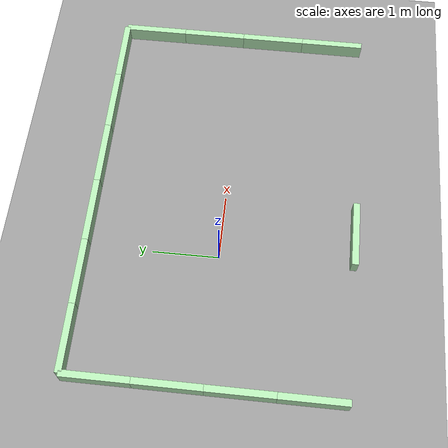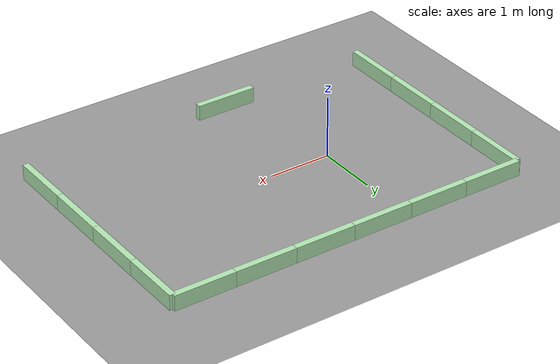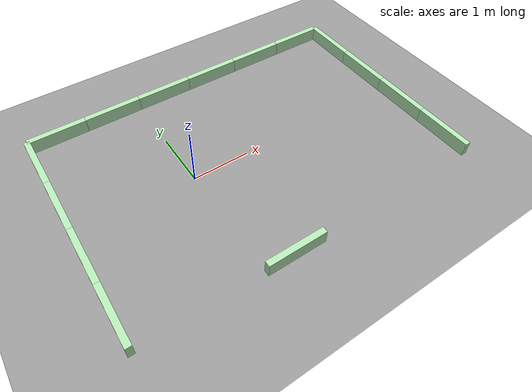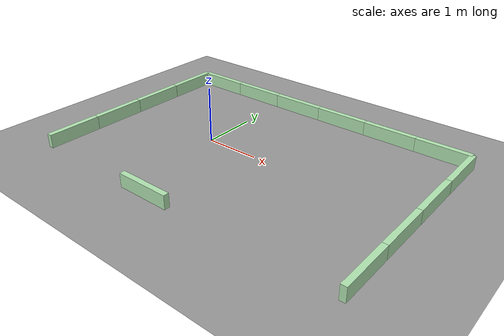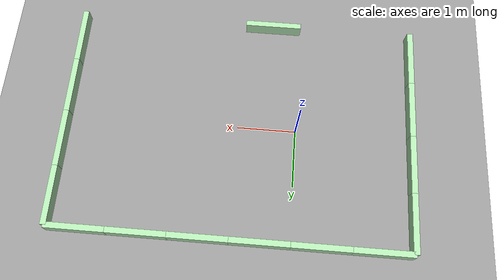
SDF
<sdf version="1.6">
 <world name="default">
  <model name="ground_plane_0">
   <static>1</static>
   <link name="link">
    <collision name="collision">
     <geometry><plane><normal>0 0 1</normal><size>100 100</size></plane></geometry>
     <surface><friction><ode><mu>100</mu><mu2>50</mu2></ode></friction></surface>
    </collision>
    <visual name="visual">
     <cast_shadows>0</cast_shadows>
     <geometry><plane><normal>0 0 1</normal><size>100 100</size></plane></geometry>
     <material>
      <script><uri>file://media/materials/scripts/gazebo.material</uri><name>Gazebo/Grey</name></script>
     </material>
    </visual>
    <velocity_decay><linear>0</linear><angular>0</angular></velocity_decay>
   </link>
   <pose>0.497681 0 0 0 -0 0</pose>
  </model>
  <model name="wall_100_25h">
   <link name="link">
    <inertial>
     <mass>1</mass>
     <inertia>
      <ixx>0.166667</ixx>
      <ixy>0</ixy>
      <ixz>0</ixz>
      <iyy>0.166667</iyy>
      <iyz>0</iyz>
      <izz>0.166667</izz>
     </inertia>
    </inertial>
    <visual name="visual">
     <geometry><box><size>1 0.1 0.25</size></box></geometry>
     <material>
      <script><name>Gazebo/Grey</name><uri>file://media/materials/scripts/gazebo.material</uri></script>
      <ambient>0.3 0.5 0.3 1</ambient>
      <diffuse>0.7 0.9 0.7 1</diffuse>
      <specular>0.01 0.02 0.01 1</specular>
      <emissive>0 0 0 1</emissive>
      <lighting>1</lighting>
      <shader type="vertex"><normal_map>__default__</normal_map></shader>
     </material>
    </visual>
    <collision name="collision">
     <geometry><box><size>1 0.1 0.25</size></box></geometry>
     <surface>
      <friction>
       <ode><mu>1</mu><mu2>1</mu2><fdir1>0 0 0</fdir1><slip1>0</slip1><slip2>0</slip2></ode>
       <torsional>
        <coefficient>1</coefficient>
        <patch_radius>0</patch_radius>
        <surface_radius>0</surface_radius>
        <use_patch_radius>1</use_patch_radius>
        <ode><slip>0</slip></ode>
       </torsional>
      </friction>
      <bounce><restitution_coefficient>0</restitution_coefficient><threshold>1e+06</threshold></bounce>
      <contact>
       <collide_without_contact>0</collide_without_contact>
       <collide_without_contact_bitmask>1</collide_without_contact_bitmask>
       <collide_bitmask>1</collide_bitmask>
       <ode>
        <soft_cfm>0</soft_cfm>
        <soft_erp>0.2</soft_erp>
        <kp>1e+13</kp>
        <kd>1</kd>
        <max_vel>0.01</max_vel>
        <min_depth>0</min_depth>
       </ode>
       <bullet>
        <split_impulse>1</split_impulse>
        <split_impulse_penetration_threshold>-0.01</split_impulse_penetration_threshold>
        <soft_cfm>0</soft_cfm>
        <soft_erp>0.2</soft_erp>
        <kp>1e+13</kp>
        <kd>1</kd>
       </bullet>
      </contact>
     </surface>
    </collision>
   </link>
   <static>1</static>
   <pose>-0.5 2 0.1252 0 -0 0</pose>
  </model>
  <model name="wall_100_25h_clone">
   <link name="link">
    <inertial>
     <mass>1</mass>
     <inertia>
      <ixx>0.166667</ixx>
      <ixy>0</ixy>
      <ixz>0</ixz>
      <iyy>0.166667</iyy>
      <iyz>0</iyz>
      <izz>0.166667</izz>
     </inertia>
    </inertial>
    <visual name="visual">
     <geometry><box><size>1 0.1 0.25</size></box></geometry>
     <material>
      <script><name>Gazebo/Grey</name><uri>file://media/materials/scripts/gazebo.material</uri></script>
      <ambient>0.3 0.5 0.3 1</ambient>
      <diffuse>0.7 0.9 0.7 1</diffuse>
      <specular>0.01 0.02 0.01 1</specular>
      <emissive>0 0 0 1</emissive>
      <lighting>1</lighting>
      <shader type="vertex"><normal_map>__default__</normal_map></shader>
     </material>
    </visual>
    <collision name="collision">
     <geometry><box><size>1 0.1 0.25</size></box></geometry>
     <surface>
      <friction>
       <ode><mu>1</mu><mu2>1</mu2><fdir1>0 0 0</fdir1><slip1>0</slip1><slip2>0</slip2></ode>
       <torsional>
        <coefficient>1</coefficient>
        <patch_radius>0</patch_radius>
        <surface_radius>0</surface_radius>
        <use_patch_radius>1</use_patch_radius>
        <ode><slip>0</slip></ode>
       </torsional>
      </friction>
      <bounce><restitution_coefficient>0</restitution_coefficient><threshold>1e+06</threshold></bounce>
      <contact>
       <collide_without_contact>0</collide_without_contact>
       <collide_without_contact_bitmask>1</collide_without_contact_bitmask>
       <collide_bitmask>1</collide_bitmask>
       <ode>
        <soft_cfm>0</soft_cfm>
        <soft_erp>0.2</soft_erp>
        <kp>1e+13</kp>
        <kd>1</kd>
        <max_vel>0.01</max_vel>
        <min_depth>0</min_depth>
       </ode>
       <bullet>
        <split_impulse>1</split_impulse>
        <split_impulse_penetration_threshold>-0.01</split_impulse_penetration_threshold>
        <soft_cfm>0</soft_cfm>
        <soft_erp>0.2</soft_erp>
        <kp>1e+13</kp>
        <kd>1</kd>
       </bullet>
      </contact>
     </surface>
    </collision>
   </link>
   <static>1</static>
   <pose>0.5 2 0.1252 0 -0 0</pose>
  </model>
  <model name="wall_100_25h_clone_clone">
   <link name="link">
    <inertial>
     <mass>1</mass>
     <inertia>
      <ixx>0.166667</ixx>
      <ixy>0</ixy>
      <ixz>0</ixz>
      <iyy>0.166667</iyy>
      <iyz>0</iyz>
      <izz>0.166667</izz>
     </inertia>
    </inertial>
    <visual name="visual">
     <geometry><box><size>1 0.1 0.25</size></box></geometry>
     <material>
      <script><name>Gazebo/Grey</name><uri>file://media/materials/scripts/gazebo.material</uri></script>
      <ambient>0.3 0.5 0.3 1</ambient>
      <diffuse>0.7 0.9 0.7 1</diffuse>
      <specular>0.01 0.02 0.01 1</specular>
      <emissive>0 0 0 1</emissive>
      <lighting>1</lighting>
      <shader type="vertex"><normal_map>__default__</normal_map></shader>
     </material>
    </visual>
    <collision name="collision">
     <geometry><box><size>1 0.1 0.25</size></box></geometry>
     <surface>
      <friction>
       <ode><mu>1</mu><mu2>1</mu2><fdir1>0 0 0</fdir1><slip1>0</slip1><slip2>0</slip2></ode>
       <torsional>
        <coefficient>1</coefficient>
        <patch_radius>0</patch_radius>
        <surface_radius>0</surface_radius>
        <use_patch_radius>1</use_patch_radius>
        <ode><slip>0</slip></ode>
       </torsional>
      </friction>
      <bounce><restitution_coefficient>0</restitution_coefficient><threshold>1e+06</threshold></bounce>
      <contact>
       <collide_without_contact>0</collide_without_contact>
       <collide_without_contact_bitmask>1</collide_without_contact_bitmask>
       <collide_bitmask>1</collide_bitmask>
       <ode>
        <soft_cfm>0</soft_cfm>
        <soft_erp>0.2</soft_erp>
        <kp>1e+13</kp>
        <kd>1</kd>
        <max_vel>0.01</max_vel>
        <min_depth>0</min_depth>
       </ode>
       <bullet>
        <split_impulse>1</split_impulse>
        <split_impulse_penetration_threshold>-0.01</split_impulse_penetration_threshold>
        <soft_cfm>0</soft_cfm>
        <soft_erp>0.2</soft_erp>
        <kp>1e+13</kp>
        <kd>1</kd>
       </bullet>
      </contact>
     </surface>
    </collision>
   </link>
   <static>1</static>
   <pose>1.5 2 0.1252 0 -0 0</pose>
  </model>
  <model name="wall_100_25h_clone_clone_0">
   <link name="link">
    <inertial>
     <mass>1</mass>
     <inertia>
      <ixx>0.166667</ixx>
      <ixy>0</ixy>
      <ixz>0</ixz>
      <iyy>0.166667</iyy>
      <iyz>0</iyz>
      <izz>0.166667</izz>
     </inertia>
    </inertial>
    <visual name="visual">
     <geometry><box><size>1 0.1 0.25</size></box></geometry>
     <material>
      <script><name>Gazebo/Grey</name><uri>file://media/materials/scripts/gazebo.material</uri></script>
      <ambient>0.3 0.5 0.3 1</ambient>
      <diffuse>0.7 0.9 0.7 1</diffuse>
      <specular>0.01 0.02 0.01 1</specular>
      <emissive>0 0 0 1</emissive>
      <lighting>1</lighting>
      <shader type="vertex"><normal_map>__default__</normal_map></shader>
     </material>
    </visual>
    <collision name="collision">
     <geometry><box><size>1 0.1 0.25</size></box></geometry>
     <surface>
      <friction>
       <ode><mu>1</mu><mu2>1</mu2><fdir1>0 0 0</fdir1><slip1>0</slip1><slip2>0</slip2></ode>
       <torsional>
        <coefficient>1</coefficient>
        <patch_radius>0</patch_radius>
        <surface_radius>0</surface_radius>
        <use_patch_radius>1</use_patch_radius>
        <ode><slip>0</slip></ode>
       </torsional>
      </friction>
      <bounce><restitution_coefficient>0</restitution_coefficient><threshold>1e+06</threshold></bounce>
      <contact>
       <collide_without_contact>0</collide_without_contact>
       <collide_without_contact_bitmask>1</collide_without_contact_bitmask>
       <collide_bitmask>1</collide_bitmask>
       <ode>
        <soft_cfm>0</soft_cfm>
        <soft_erp>0.2</soft_erp>
        <kp>1e+13</kp>
        <kd>1</kd>
        <max_vel>0.01</max_vel>
        <min_depth>0</min_depth>
       </ode>
       <bullet>
        <split_impulse>1</split_impulse>
        <split_impulse_penetration_threshold>-0.01</split_impulse_penetration_threshold>
        <soft_cfm>0</soft_cfm>
        <soft_erp>0.2</soft_erp>
        <kp>1e+13</kp>
        <kd>1</kd>
       </bullet>
      </contact>
     </surface>
    </collision>
   </link>
   <static>1</static>
   <pose>-1.5 2 0.1252 0 -0 0</pose>
  </model>
  <model name="wall_100_25h_clone_clone_2">
   <link name="link">
    <inertial>
     <mass>1</mass>
     <inertia>
      <ixx>0.166667</ixx>
      <ixy>0</ixy>
      <ixz>0</ixz>
      <iyy>0.166667</iyy>
      <iyz>0</iyz>
      <izz>0.166667</izz>
     </inertia>
    </inertial>
    <visual name="visual">
     <geometry><box><size>1 0.1 0.25</size></box></geometry>
     <material>
      <script><name>Gazebo/Grey</name><uri>file://media/materials/scripts/gazebo.material</uri></script>
      <ambient>0.3 0.5 0.3 1</ambient>
      <diffuse>0.7 0.9 0.7 1</diffuse>
      <specular>0.01 0.02 0.01 1</specular>
      <emissive>0 0 0 1</emissive>
      <lighting>1</lighting>
      <shader type="vertex"><normal_map>__default__</normal_map></shader>
     </material>
    </visual>
    <collision name="collision">
     <geometry><box><size>1 0.1 0.25</size></box></geometry>
     <surface>
      <friction>
       <ode><mu>1</mu><mu2>1</mu2><fdir1>0 0 0</fdir1><slip1>0</slip1><slip2>0</slip2></ode>
       <torsional>
        <coefficient>1</coefficient>
        <patch_radius>0</patch_radius>
        <surface_radius>0</surface_radius>
        <use_patch_radius>1</use_patch_radius>
        <ode><slip>0</slip></ode>
       </torsional>
      </friction>
      <bounce><restitution_coefficient>0</restitution_coefficient><threshold>1e+06</threshold></bounce>
      <contact>
       <collide_without_contact>0</collide_without_contact>
       <collide_without_contact_bitmask>1</collide_without_contact_bitmask>
       <collide_bitmask>1</collide_bitmask>
       <ode>
        <soft_cfm>0</soft_cfm>
        <soft_erp>0.2</soft_erp>
        <kp>1e+13</kp>
        <kd>1</kd>
        <max_vel>0.01</max_vel>
        <min_depth>0</min_depth>
       </ode>
       <bullet>
        <split_impulse>1</split_impulse>
        <split_impulse_penetration_threshold>-0.01</split_impulse_penetration_threshold>
        <soft_cfm>0</soft_cfm>
        <soft_erp>0.2</soft_erp>
        <kp>1e+13</kp>
        <kd>1</kd>
       </bullet>
      </contact>
     </surface>
    </collision>
   </link>
   <static>1</static>
   <pose>0.502276 -1.99731 0.1252 0 -0 0</pose>
  </model>
  <model name="wall_100_25h_clone_clone_5_clone_2">
   <link name="link">
    <inertial>
     <mass>1</mass>
     <inertia>
      <ixx>0.166667</ixx>
      <ixy>0</ixy>
      <ixz>0</ixz>
      <iyy>0.166667</iyy>
      <iyz>0</iyz>
      <izz>0.166667</izz>
     </inertia>
    </inertial>
    <visual name="visual">
     <geometry><box><size>1 0.1 0.25</size></box></geometry>
     <material>
      <script><name>Gazebo/Grey</name><uri>file://media/materials/scripts/gazebo.material</uri></script>
      <ambient>0.3 0.5 0.3 1</ambient>
      <diffuse>0.7 0.9 0.7 1</diffuse>
      <specular>0.01 0.02 0.01 1</specular>
      <emissive>0 0 0 1</emissive>
      <lighting>1</lighting>
      <shader type="vertex"><normal_map>__default__</normal_map></shader>
     </material>
    </visual>
    <collision name="collision">
     <geometry><box><size>1 0.1 0.25</size></box></geometry>
     <surface>
      <friction>
       <ode><mu>1</mu><mu2>1</mu2><fdir1>0 0 0</fdir1><slip1>0</slip1><slip2>0</slip2></ode>
       <torsional>
        <coefficient>1</coefficient>
        <patch_radius>0</patch_radius>
        <surface_radius>0</surface_radius>
        <use_patch_radius>1</use_patch_radius>
        <ode><slip>0</slip></ode>
       </torsional>
      </friction>
      <bounce><restitution_coefficient>0</restitution_coefficient><threshold>1e+06</threshold></bounce>
      <contact>
       <collide_without_contact>0</collide_without_contact>
       <collide_without_contact_bitmask>1</collide_without_contact_bitmask>
       <collide_bitmask>1</collide_bitmask>
       <ode>
        <soft_cfm>0</soft_cfm>
        <soft_erp>0.2</soft_erp>
        <kp>1e+13</kp>
        <kd>1</kd>
        <max_vel>0.01</max_vel>
        <min_depth>0</min_depth>
       </ode>
       <bullet>
        <split_impulse>1</split_impulse>
        <split_impulse_penetration_threshold>-0.01</split_impulse_penetration_threshold>
        <soft_cfm>0</soft_cfm>
        <soft_erp>0.2</soft_erp>
        <kp>1e+13</kp>
        <kd>1</kd>
       </bullet>
      </contact>
     </surface>
    </collision>
   </link>
   <static>1</static>
   <pose>-2 -1.5 0.1252 0 0 -1.57</pose>
  </model>
  <model name="wall_100_25h_clone_clone_5_clone_3">
   <link name="link">
    <inertial>
     <mass>1</mass>
     <inertia>
      <ixx>0.166667</ixx>
      <ixy>0</ixy>
      <ixz>0</ixz>
      <iyy>0.166667</iyy>
      <iyz>0</iyz>
      <izz>0.166667</izz>
     </inertia>
    </inertial>
    <visual name="visual">
     <geometry><box><size>1 0.1 0.25</size></box></geometry>
     <material>
      <script><name>Gazebo/Grey</name><uri>file://media/materials/scripts/gazebo.material</uri></script>
      <ambient>0.3 0.5 0.3 1</ambient>
      <diffuse>0.7 0.9 0.7 1</diffuse>
      <specular>0.01 0.02 0.01 1</specular>
      <emissive>0 0 0 1</emissive>
      <lighting>1</lighting>
      <shader type="vertex"><normal_map>__default__</normal_map></shader>
     </material>
    </visual>
    <collision name="collision">
     <geometry><box><size>1 0.1 0.25</size></box></geometry>
     <surface>
      <friction>
       <ode><mu>1</mu><mu2>1</mu2><fdir1>0 0 0</fdir1><slip1>0</slip1><slip2>0</slip2></ode>
       <torsional>
        <coefficient>1</coefficient>
        <patch_radius>0</patch_radius>
        <surface_radius>0</surface_radius>
        <use_patch_radius>1</use_patch_radius>
        <ode><slip>0</slip></ode>
       </torsional>
      </friction>
      <bounce><restitution_coefficient>0</restitution_coefficient><threshold>1e+06</threshold></bounce>
      <contact>
       <collide_without_contact>0</collide_without_contact>
       <collide_without_contact_bitmask>1</collide_without_contact_bitmask>
       <collide_bitmask>1</collide_bitmask>
       <ode>
        <soft_cfm>0</soft_cfm>
        <soft_erp>0.2</soft_erp>
        <kp>1e+13</kp>
        <kd>1</kd>
        <max_vel>0.01</max_vel>
        <min_depth>0</min_depth>
       </ode>
       <bullet>
        <split_impulse>1</split_impulse>
        <split_impulse_penetration_threshold>-0.01</split_impulse_penetration_threshold>
        <soft_cfm>0</soft_cfm>
        <soft_erp>0.2</soft_erp>
        <kp>1e+13</kp>
        <kd>1</kd>
       </bullet>
      </contact>
     </surface>
    </collision>
   </link>
   <static>1</static>
   <pose>-2 -0.5 0.1252 0 0 -1.57</pose>
  </model>
  <model name="wall_100_25h_clone_clone_5_clone_4">
   <link name="link">
    <inertial>
     <mass>1</mass>
     <inertia>
      <ixx>0.166667</ixx>
      <ixy>0</ixy>
      <ixz>0</ixz>
      <iyy>0.166667</iyy>
      <iyz>0</iyz>
      <izz>0.166667</izz>
     </inertia>
    </inertial>
    <visual name="visual">
     <geometry><box><size>1 0.1 0.25</size></box></geometry>
     <material>
      <script><name>Gazebo/Grey</name><uri>file://media/materials/scripts/gazebo.material</uri></script>
      <ambient>0.3 0.5 0.3 1</ambient>
      <diffuse>0.7 0.9 0.7 1</diffuse>
      <specular>0.01 0.02 0.01 1</specular>
      <emissive>0 0 0 1</emissive>
      <lighting>1</lighting>
      <shader type="vertex"><normal_map>__default__</normal_map></shader>
     </material>
    </visual>
    <collision name="collision">
     <geometry><box><size>1 0.1 0.25</size></box></geometry>
     <surface>
      <friction>
       <ode><mu>1</mu><mu2>1</mu2><fdir1>0 0 0</fdir1><slip1>0</slip1><slip2>0</slip2></ode>
       <torsional>
        <coefficient>1</coefficient>
        <patch_radius>0</patch_radius>
        <surface_radius>0</surface_radius>
        <use_patch_radius>1</use_patch_radius>
        <ode><slip>0</slip></ode>
       </torsional>
      </friction>
      <bounce><restitution_coefficient>0</restitution_coefficient><threshold>1e+06</threshold></bounce>
      <contact>
       <collide_without_contact>0</collide_without_contact>
       <collide_without_contact_bitmask>1</collide_without_contact_bitmask>
       <collide_bitmask>1</collide_bitmask>
       <ode>
        <soft_cfm>0</soft_cfm>
        <soft_erp>0.2</soft_erp>
        <kp>1e+13</kp>
        <kd>1</kd>
        <max_vel>0.01</max_vel>
        <min_depth>0</min_depth>
       </ode>
       <bullet>
        <split_impulse>1</split_impulse>
        <split_impulse_penetration_threshold>-0.01</split_impulse_penetration_threshold>
        <soft_cfm>0</soft_cfm>
        <soft_erp>0.2</soft_erp>
        <kp>1e+13</kp>
        <kd>1</kd>
       </bullet>
      </contact>
     </surface>
    </collision>
   </link>
   <static>1</static>
   <pose>-2 0.5 0.1252 0 0 -1.57</pose>
  </model>
  <model name="wall_100_25h_clone_clone_5_clone_5">
   <link name="link">
    <inertial>
     <mass>1</mass>
     <inertia>
      <ixx>0.166667</ixx>
      <ixy>0</ixy>
      <ixz>0</ixz>
      <iyy>0.166667</iyy>
      <iyz>0</iyz>
      <izz>0.166667</izz>
     </inertia>
    </inertial>
    <visual name="visual">
     <geometry><box><size>1 0.1 0.25</size></box></geometry>
     <material>
      <script><name>Gazebo/Grey</name><uri>file://media/materials/scripts/gazebo.material</uri></script>
      <ambient>0.3 0.5 0.3 1</ambient>
      <diffuse>0.7 0.9 0.7 1</diffuse>
      <specular>0.01 0.02 0.01 1</specular>
      <emissive>0 0 0 1</emissive>
      <lighting>1</lighting>
      <shader type="vertex"><normal_map>__default__</normal_map></shader>
     </material>
    </visual>
    <collision name="collision">
     <geometry><box><size>1 0.1 0.25</size></box></geometry>
     <surface>
      <friction>
       <ode><mu>1</mu><mu2>1</mu2><fdir1>0 0 0</fdir1><slip1>0</slip1><slip2>0</slip2></ode>
       <torsional>
        <coefficient>1</coefficient>
        <patch_radius>0</patch_radius>
        <surface_radius>0</surface_radius>
        <use_patch_radius>1</use_patch_radius>
        <ode><slip>0</slip></ode>
       </torsional>
      </friction>
      <bounce><restitution_coefficient>0</restitution_coefficient><threshold>1e+06</threshold></bounce>
      <contact>
       <collide_without_contact>0</collide_without_contact>
       <collide_without_contact_bitmask>1</collide_without_contact_bitmask>
       <collide_bitmask>1</collide_bitmask>
       <ode>
        <soft_cfm>0</soft_cfm>
        <soft_erp>0.2</soft_erp>
        <kp>1e+13</kp>
        <kd>1</kd>
        <max_vel>0.01</max_vel>
        <min_depth>0</min_depth>
       </ode>
       <bullet>
        <split_impulse>1</split_impulse>
        <split_impulse_penetration_threshold>-0.01</split_impulse_penetration_threshold>
        <soft_cfm>0</soft_cfm>
        <soft_erp>0.2</soft_erp>
        <kp>1e+13</kp>
        <kd>1</kd>
       </bullet>
      </contact>
     </surface>
    </collision>
   </link>
   <static>1</static>
   <pose>-2 1.5 0.1252 0 0 -1.57</pose>
  </model>
  <model name="wall_100_25h_clone_clone_5_clone_1_clone_1">
   <link name="link">
    <inertial>
     <mass>1</mass>
     <inertia>
      <ixx>0.166667</ixx>
      <ixy>0</ixy>
      <ixz>0</ixz>
      <iyy>0.166667</iyy>
      <iyz>0</iyz>
      <izz>0.166667</izz>
     </inertia>
    </inertial>
    <visual name="visual">
     <geometry><box><size>1 0.1 0.25</size></box></geometry>
     <material>
      <script><name>Gazebo/Grey</name><uri>file://media/materials/scripts/gazebo.material</uri></script>
      <ambient>0.3 0.5 0.3 1</ambient>
      <diffuse>0.7 0.9 0.7 1</diffuse>
      <specular>0.01 0.02 0.01 1</specular>
      <emissive>0 0 0 1</emissive>
      <lighting>1</lighting>
      <shader type="vertex"><normal_map>__default__</normal_map></shader>
     </material>
    </visual>
    <collision name="collision">
     <geometry><box><size>1 0.1 0.25</size></box></geometry>
     <surface>
      <friction>
       <ode><mu>1</mu><mu2>1</mu2><fdir1>0 0 0</fdir1><slip1>0</slip1><slip2>0</slip2></ode>
       <torsional>
        <coefficient>1</coefficient>
        <patch_radius>0</patch_radius>
        <surface_radius>0</surface_radius>
        <use_patch_radius>1</use_patch_radius>
        <ode><slip>0</slip></ode>
       </torsional>
      </friction>
      <bounce><restitution_coefficient>0</restitution_coefficient><threshold>1e+06</threshold></bounce>
      <contact>
       <collide_without_contact>0</collide_without_contact>
       <collide_without_contact_bitmask>1</collide_without_contact_bitmask>
       <collide_bitmask>1</collide_bitmask>
       <ode>
        <soft_cfm>0</soft_cfm>
        <soft_erp>0.2</soft_erp>
        <kp>1e+13</kp>
        <kd>1</kd>
        <max_vel>0.01</max_vel>
        <min_depth>0</min_depth>
       </ode>
       <bullet>
        <split_impulse>1</split_impulse>
        <split_impulse_penetration_threshold>-0.01</split_impulse_penetration_threshold>
        <soft_cfm>0</soft_cfm>
        <soft_erp>0.2</soft_erp>
        <kp>1e+13</kp>
        <kd>1</kd>
       </bullet>
      </contact>
     </surface>
    </collision>
   </link>
   <static>1</static>
   <pose>4 -1.5 0.1252 0 0 -1.5708</pose>
  </model>
  <model name="wall_100_25h_clone_clone_5_clone_1_clone_2">
   <link name="link">
    <inertial>
     <mass>1</mass>
     <inertia>
      <ixx>0.166667</ixx>
      <ixy>0</ixy>
      <ixz>0</ixz>
      <iyy>0.166667</iyy>
      <iyz>0</iyz>
      <izz>0.166667</izz>
     </inertia>
    </inertial>
    <visual name="visual">
     <geometry><box><size>1 0.1 0.25</size></box></geometry>
     <material>
      <script><name>Gazebo/Grey</name><uri>file://media/materials/scripts/gazebo.material</uri></script>
      <ambient>0.3 0.5 0.3 1</ambient>
      <diffuse>0.7 0.9 0.7 1</diffuse>
      <specular>0.01 0.02 0.01 1</specular>
      <emissive>0 0 0 1</emissive>
      <lighting>1</lighting>
      <shader type="vertex"><normal_map>__default__</normal_map></shader>
     </material>
    </visual>
    <collision name="collision">
     <geometry><box><size>1 0.1 0.25</size></box></geometry>
     <surface>
      <friction>
       <ode><mu>1</mu><mu2>1</mu2><fdir1>0 0 0</fdir1><slip1>0</slip1><slip2>0</slip2></ode>
       <torsional>
        <coefficient>1</coefficient>
        <patch_radius>0</patch_radius>
        <surface_radius>0</surface_radius>
        <use_patch_radius>1</use_patch_radius>
        <ode><slip>0</slip></ode>
       </torsional>
      </friction>
      <bounce><restitution_coefficient>0</restitution_coefficient><threshold>1e+06</threshold></bounce>
      <contact>
       <collide_without_contact>0</collide_without_contact>
       <collide_without_contact_bitmask>1</collide_without_contact_bitmask>
       <collide_bitmask>1</collide_bitmask>
       <ode>
        <soft_cfm>0</soft_cfm>
        <soft_erp>0.2</soft_erp>
        <kp>1e+13</kp>
        <kd>1</kd>
        <max_vel>0.01</max_vel>
        <min_depth>0</min_depth>
       </ode>
       <bullet>
        <split_impulse>1</split_impulse>
        <split_impulse_penetration_threshold>-0.01</split_impulse_penetration_threshold>
        <soft_cfm>0</soft_cfm>
        <soft_erp>0.2</soft_erp>
        <kp>1e+13</kp>
        <kd>1</kd>
       </bullet>
      </contact>
     </surface>
    </collision>
   </link>
   <static>1</static>
   <pose>4 -0.5 0.1252 0 0 -1.5708</pose>
  </model>
  <model name="wall_100_25h_clone_clone_5_clone_1_clone_3">
   <link name="link">
    <inertial>
     <mass>1</mass>
     <inertia>
      <ixx>0.166667</ixx>
      <ixy>0</ixy>
      <ixz>0</ixz>
      <iyy>0.166667</iyy>
      <iyz>0</iyz>
      <izz>0.166667</izz>
     </inertia>
    </inertial>
    <visual name="visual">
     <geometry><box><size>1 0.1 0.25</size></box></geometry>
     <material>
      <script><name>Gazebo/Grey</name><uri>file://media/materials/scripts/gazebo.material</uri></script>
      <ambient>0.3 0.5 0.3 1</ambient>
      <diffuse>0.7 0.9 0.7 1</diffuse>
      <specular>0.01 0.02 0.01 1</specular>
      <emissive>0 0 0 1</emissive>
      <lighting>1</lighting>
      <shader type="vertex"><normal_map>__default__</normal_map></shader>
     </material>
    </visual>
    <collision name="collision">
     <geometry><box><size>1 0.1 0.25</size></box></geometry>
     <surface>
      <friction>
       <ode><mu>1</mu><mu2>1</mu2><fdir1>0 0 0</fdir1><slip1>0</slip1><slip2>0</slip2></ode>
       <torsional>
        <coefficient>1</coefficient>
        <patch_radius>0</patch_radius>
        <surface_radius>0</surface_radius>
        <use_patch_radius>1</use_patch_radius>
        <ode><slip>0</slip></ode>
       </torsional>
      </friction>
      <bounce><restitution_coefficient>0</restitution_coefficient><threshold>1e+06</threshold></bounce>
      <contact>
       <collide_without_contact>0</collide_without_contact>
       <collide_without_contact_bitmask>1</collide_without_contact_bitmask>
       <collide_bitmask>1</collide_bitmask>
       <ode>
        <soft_cfm>0</soft_cfm>
        <soft_erp>0.2</soft_erp>
        <kp>1e+13</kp>
        <kd>1</kd>
        <max_vel>0.01</max_vel>
        <min_depth>0</min_depth>
       </ode>
       <bullet>
        <split_impulse>1</split_impulse>
        <split_impulse_penetration_threshold>-0.01</split_impulse_penetration_threshold>
        <soft_cfm>0</soft_cfm>
        <soft_erp>0.2</soft_erp>
        <kp>1e+13</kp>
        <kd>1</kd>
       </bullet>
      </contact>
     </surface>
    </collision>
   </link>
   <static>1</static>
   <pose>4 0.5 0.1252 0 0 -1.5708</pose>
  </model>
  <model name="wall_100_25h_clone_clone_5_clone_1_clone_4">
   <link name="link">
    <inertial>
     <mass>1</mass>
     <inertia>
      <ixx>0.166667</ixx>
      <ixy>0</ixy>
      <ixz>0</ixz>
      <iyy>0.166667</iyy>
      <iyz>0</iyz>
      <izz>0.166667</izz>
     </inertia>
    </inertial>
    <visual name="visual">
     <geometry><box><size>1 0.1 0.25</size></box></geometry>
     <material>
      <script><name>Gazebo/Grey</name><uri>file://media/materials/scripts/gazebo.material</uri></script>
      <ambient>0.3 0.5 0.3 1</ambient>
      <diffuse>0.7 0.9 0.7 1</diffuse>
      <specular>0.01 0.02 0.01 1</specular>
      <emissive>0 0 0 1</emissive>
      <lighting>1</lighting>
      <shader type="vertex"><normal_map>__default__</normal_map></shader>
     </material>
    </visual>
    <collision name="collision">
     <geometry><box><size>1 0.1 0.25</size></box></geometry>
     <surface>
      <friction>
       <ode><mu>1</mu><mu2>1</mu2><fdir1>0 0 0</fdir1><slip1>0</slip1><slip2>0</slip2></ode>
       <torsional>
        <coefficient>1</coefficient>
        <patch_radius>0</patch_radius>
        <surface_radius>0</surface_radius>
        <use_patch_radius>1</use_patch_radius>
        <ode><slip>0</slip></ode>
       </torsional>
      </friction>
      <bounce><restitution_coefficient>0</restitution_coefficient><threshold>1e+06</threshold></bounce>
      <contact>
       <collide_without_contact>0</collide_without_contact>
       <collide_without_contact_bitmask>1</collide_without_contact_bitmask>
       <collide_bitmask>1</collide_bitmask>
       <ode>
        <soft_cfm>0</soft_cfm>
        <soft_erp>0.2</soft_erp>
        <kp>1e+13</kp>
        <kd>1</kd>
        <max_vel>0.01</max_vel>
        <min_depth>0</min_depth>
       </ode>
       <bullet>
        <split_impulse>1</split_impulse>
        <split_impulse_penetration_threshold>-0.01</split_impulse_penetration_threshold>
        <soft_cfm>0</soft_cfm>
        <soft_erp>0.2</soft_erp>
        <kp>1e+13</kp>
        <kd>1</kd>
       </bullet>
      </contact>
     </surface>
    </collision>
   </link>
   <static>1</static>
   <pose>4 1.5 0.1252 0 0 -1.5708</pose>
  </model>
  <model name="wall_100_25h_clone_clone_clone">
   <link name="link">
    <inertial>
     <mass>1</mass>
     <inertia>
      <ixx>0.166667</ixx>
      <ixy>0</ixy>
      <ixz>0</ixz>
      <iyy>0.166667</iyy>
      <iyz>0</iyz>
      <izz>0.166667</izz>
     </inertia>
    </inertial>
    <visual name="visual">
     <geometry><box><size>1 0.1 0.25</size></box></geometry>
     <material>
      <script><name>Gazebo/Grey</name><uri>file://media/materials/scripts/gazebo.material</uri></script>
      <ambient>0.3 0.5 0.3 1</ambient>
      <diffuse>0.7 0.9 0.7 1</diffuse>
      <specular>0.01 0.02 0.01 1</specular>
      <emissive>0 0 0 1</emissive>
      <lighting>1</lighting>
      <shader type="vertex"><normal_map>__default__</normal_map></shader>
     </material>
    </visual>
    <collision name="collision">
     <geometry><box><size>1 0.1 0.25</size></box></geometry>
     <surface>
      <friction>
       <ode><mu>1</mu><mu2>1</mu2><fdir1>0 0 0</fdir1><slip1>0</slip1><slip2>0</slip2></ode>
       <torsional>
        <coefficient>1</coefficient>
        <patch_radius>0</patch_radius>
        <surface_radius>0</surface_radius>
        <use_patch_radius>1</use_patch_radius>
        <ode><slip>0</slip></ode>
       </torsional>
      </friction>
      <bounce><restitution_coefficient>0</restitution_coefficient><threshold>1e+06</threshold></bounce>
      <contact>
       <collide_without_contact>0</collide_without_contact>
       <collide_without_contact_bitmask>1</collide_without_contact_bitmask>
       <collide_bitmask>1</collide_bitmask>
       <ode>
        <soft_cfm>0</soft_cfm>
        <soft_erp>0.2</soft_erp>
        <kp>1e+13</kp>
        <kd>1</kd>
        <max_vel>0.01</max_vel>
        <min_depth>0</min_depth>
       </ode>
       <bullet>
        <split_impulse>1</split_impulse>
        <split_impulse_penetration_threshold>-0.01</split_impulse_penetration_threshold>
        <soft_cfm>0</soft_cfm>
        <soft_erp>0.2</soft_erp>
        <kp>1e+13</kp>
        <kd>1</kd>
       </bullet>
      </contact>
     </surface>
    </collision>
   </link>
   <static>1</static>
   <pose>2.5 2 0.1252 0 -0 0</pose>
  </model>
  <model name="wall_100_25h_clone_clone_clone_0">
   <link name="link">
    <inertial>
     <mass>1</mass>
     <inertia>
      <ixx>0.166667</ixx>
      <ixy>0</ixy>
      <ixz>0</ixz>
      <iyy>0.166667</iyy>
      <iyz>0</iyz>
      <izz>0.166667</izz>
     </inertia>
    </inertial>
    <visual name="visual">
     <geometry><box><size>1 0.1 0.25</size></box></geometry>
     <material>
      <script><name>Gazebo/Grey</name><uri>file://media/materials/scripts/gazebo.material</uri></script>
      <ambient>0.3 0.5 0.3 1</ambient>
      <diffuse>0.7 0.9 0.7 1</diffuse>
      <specular>0.01 0.02 0.01 1</specular>
      <emissive>0 0 0 1</emissive>
      <lighting>1</lighting>
      <shader type="vertex"><normal_map>__default__</normal_map></shader>
     </material>
    </visual>
    <collision name="collision">
     <geometry><box><size>1 0.1 0.25</size></box></geometry>
     <surface>
      <friction>
       <ode><mu>1</mu><mu2>1</mu2><fdir1>0 0 0</fdir1><slip1>0</slip1><slip2>0</slip2></ode>
       <torsional>
        <coefficient>1</coefficient>
        <patch_radius>0</patch_radius>
        <surface_radius>0</surface_radius>
        <use_patch_radius>1</use_patch_radius>
        <ode><slip>0</slip></ode>
       </torsional>
      </friction>
      <bounce><restitution_coefficient>0</restitution_coefficient><threshold>1e+06</threshold></bounce>
      <contact>
       <collide_without_contact>0</collide_without_contact>
       <collide_without_contact_bitmask>1</collide_without_contact_bitmask>
       <collide_bitmask>1</collide_bitmask>
       <ode>
        <soft_cfm>0</soft_cfm>
        <soft_erp>0.2</soft_erp>
        <kp>1e+13</kp>
        <kd>1</kd>
        <max_vel>0.01</max_vel>
        <min_depth>0</min_depth>
       </ode>
       <bullet>
        <split_impulse>1</split_impulse>
        <split_impulse_penetration_threshold>-0.01</split_impulse_penetration_threshold>
        <soft_cfm>0</soft_cfm>
        <soft_erp>0.2</soft_erp>
        <kp>1e+13</kp>
        <kd>1</kd>
       </bullet>
      </contact>
     </surface>
    </collision>
   </link>
   <static>1</static>
   <pose>3.5 2 0.1252 0 -0 0</pose>
  </model>
 </world>
</sdf>
